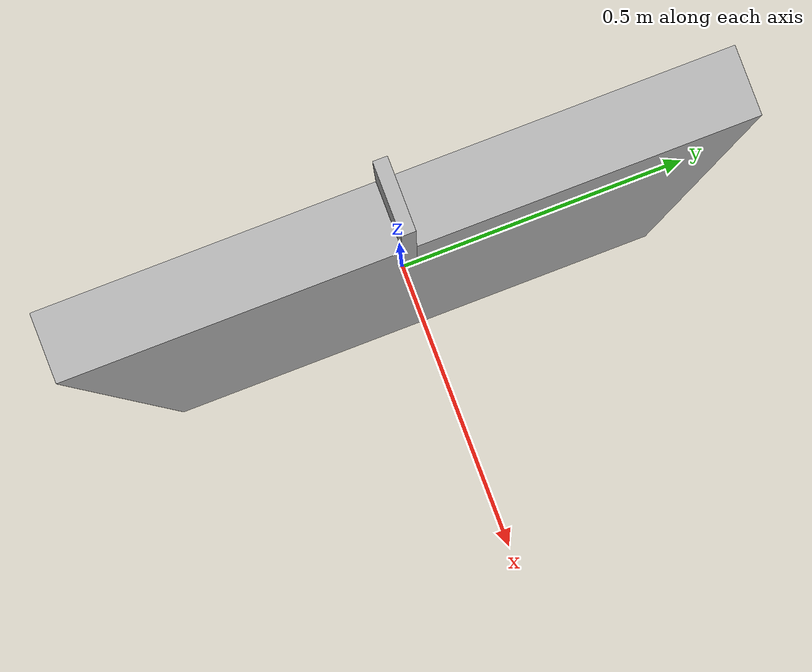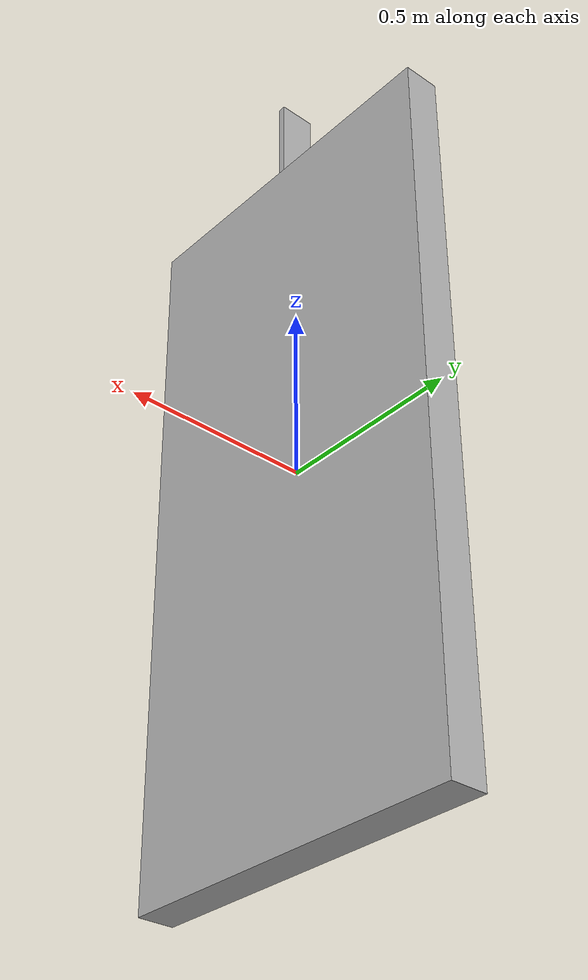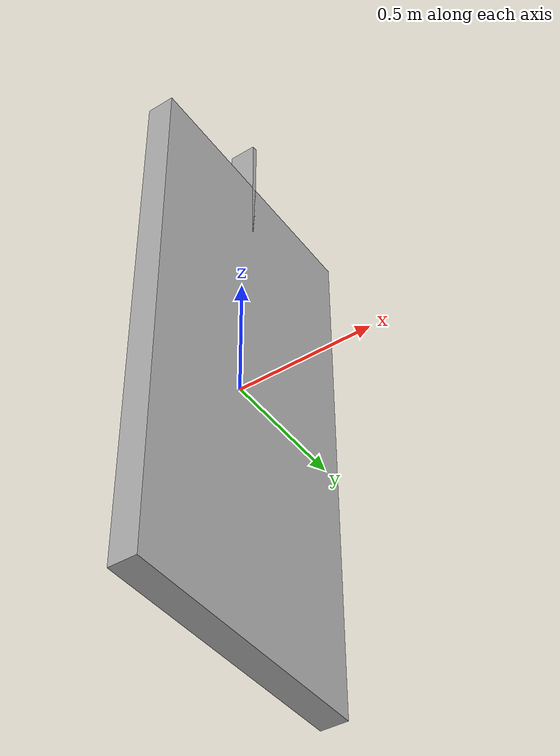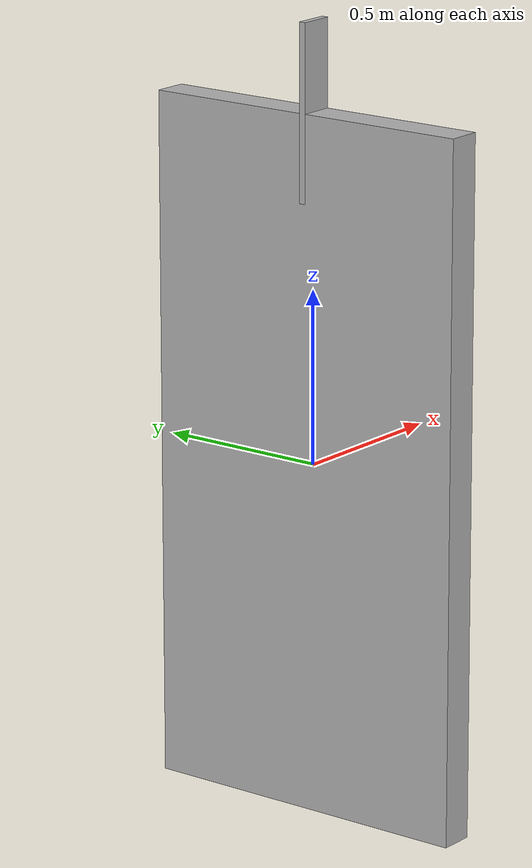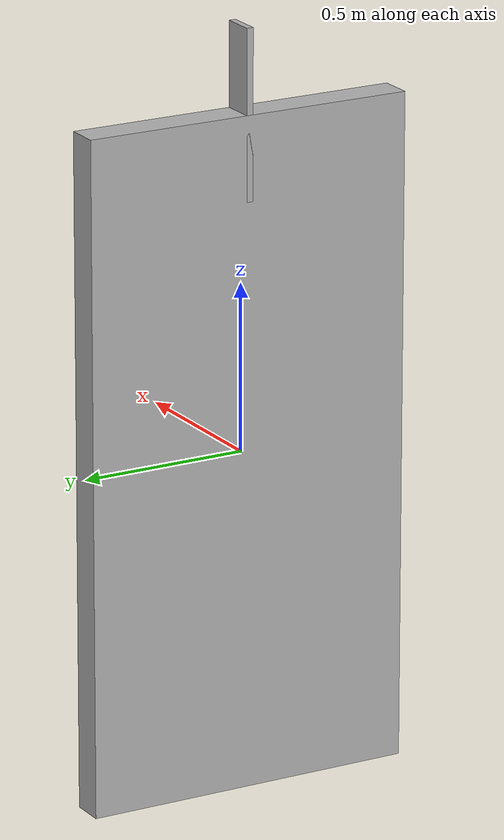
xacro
<?xml version="1.0"?>
<robot name="door">
  <material name="grey">
    <color rgba="0.7 0.7 0.7 1"/>
  </material>

  <link name="door_frame">
    <visual>
      <geometry>
        <box size="0.1 1.0 2.0"/>
      </geometry>
      <material name="grey"/>
    </visual>
    <collision>
      <geometry>
        <box size="0.1 1.0 2.0"/>
      </geometry>
    </collision>
  </link>

  <joint name="door_hinge" type="revolute">
    <origin xyz="0.0 0.0 1.0" rpy="0 0 0"/>
    <parent link="door_frame"/>
    <child link="door"/>
    <axis xyz="0 0 1"/>
  </joint>

  <link name="door">
    <visual>
      <geometry>
        <box size="0.1 0.02 0.5"/>
      </geometry>
      <material name="grey"/>
    </visual>
    <collision>
      <geometry>
        <box size="0.1 0.02 0.5"/>
      </geometry>
    </collision>
  </link>
</robot>
